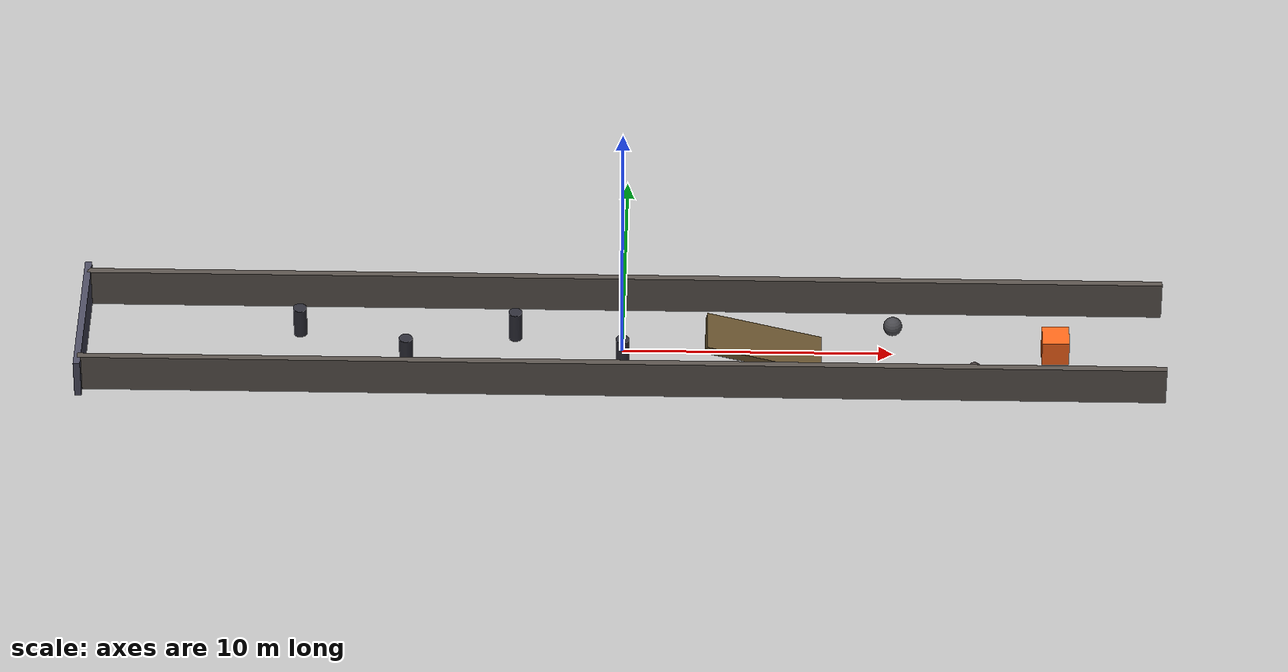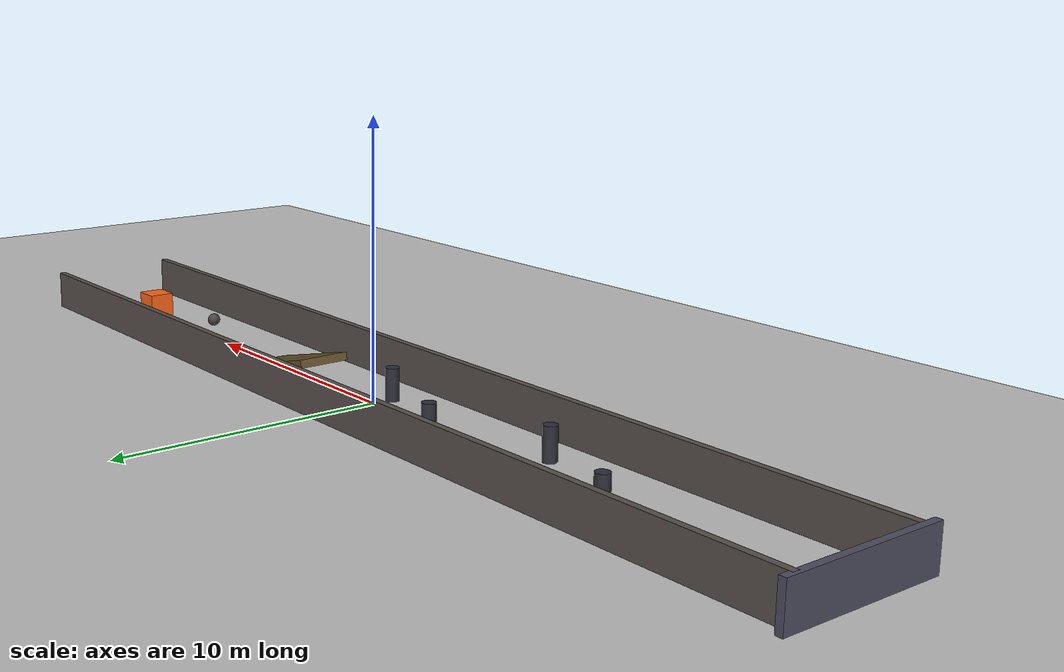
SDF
<?xml version="1.0" ?>
<sdf version="1.7">
  <world name="test01_lidar_world">
    <!-- SPAWN SPECIFICATION -->
    <!--
        x: -18 or 0 for middle
        y: 0
        z: 0.5
    -->

    <!-- Core sim systems -->
    <plugin filename="gz-sim-physics-system" name="gz::sim::systems::Physics"/>
    <plugin filename="gz-sim-user-commands-system" name="gz::sim::systems::UserCommands"/>
    <plugin filename="gz-sim-scene-broadcaster-system" name="gz::sim::systems::SceneBroadcaster"/>
    <plugin filename="gz-sim-sensors-system" name="gz::sim::systems::Sensors">
      <render_engine>ogre2</render_engine>
    </plugin>

    <!-- coordinate system real world mapping {-->
    <spherical_coordinates>
      <surface_model>EARTH_WGS84</surface_model>
      <latitude_deg>47.397743</latitude_deg>
      <longitude_deg>8.545594</longitude_deg>
      <elevation>0.0</elevation>
      <heading_deg>0</heading_deg>
    </spherical_coordinates>

    <!-- Cool LiDAR Playground -->

    <!-- Light -->
    <light name="sun" type="directional">
      <cast_shadows>true</cast_shadows>
      <pose>0 0 10 0 0 0</pose>
      <diffuse>1 1 1 1</diffuse>
      <specular>0.1 0.1 0.1 1</specular>
      <direction>-0.5 0.1 -1</direction>
    </light>

    <!-- Ground plane -->
    <model name="ground_plane">
      <static>true</static>
      <link name="link">
        <collision name="collision">
          <geometry>
            <plane>
              <normal>0 0 1</normal>
              <size>50 50</size>
            </plane>
          </geometry>
        </collision>
        <visual name="visual">
          <geometry>
            <plane>
              <normal>0 0 1</normal>
              <size>50 50</size>
            </plane>
          </geometry>
          <material>
            <diffuse>0.75 0.75 0.75 1</diffuse>
            <specular>0.1 0.1 0.1 1</specular>
          </material>
        </visual>
      </link>
    </model>

    <!-- Canyon corridor walls -->
    <model name="canyon_walls">
      <static>true</static>

      <!-- Left wall -->
      <link name="left_wall">
        <pose>0 2.5 0.75 0 0 0</pose>
        <collision name="col">
          <geometry><box><size>40 0.25 1.5</size></box></geometry>
        </collision>
        <visual name="vis">
          <geometry><box><size>40 0.25 1.5</size></box></geometry>
          <material>
            <ambient>0.25 0.23 0.22 1</ambient>
            <diffuse>0.35 0.32 0.30 1</diffuse>
            <specular>0.05 0.05 0.05 1</specular>
          </material>
        </visual>
      </link>

      <!-- Right wall -->
      <link name="right_wall">
        <pose>0 -2.5 0.75 0 0 0</pose>
        <collision name="col">
          <geometry><box><size>40 0.25 1.5</size></box></geometry>
        </collision>
        <visual name="vis">
          <geometry><box><size>40 0.25 1.5</size></box></geometry>
          <material>
            <ambient>0.25 0.23 0.22 1</ambient>
            <diffuse>0.35 0.32 0.30 1</diffuse>
            <specular>0.05 0.05 0.05 1</specular>
          </material>
        </visual>
      </link>

      <!-- Back wall -->
      <link name="back_wall">
        <pose>-20 0 0.75 0 0 0</pose>
        <collision name="col">
          <geometry><box><size>0.25 6 1.5</size></box></geometry>
        </collision>
        <visual name="vis">
          <geometry><box><size>0.25 6 1.5</size></box></geometry>
          <material>
            <ambient>0.22 0.22 0.25 1</ambient>
            <diffuse>0.30 0.30 0.38 1</diffuse>
          </material>
        </visual>
      </link>
    </model>

    <!-- Pillars (slalom)      -->
    <model name="pillar_field">
      <static>true</static>

      <!-- Pillar 1 -->
      <link name="p1">
        <pose>-12 0.8 0.6 0 0 0</pose>
        <collision name="col">
          <geometry><cylinder><radius>0.25</radius><length>1.2</length></cylinder></geometry>
        </collision>
        <visual name="vis">
          <geometry><cylinder><radius>0.25</radius><length>1.2</length></cylinder></geometry>
          <material>
            <ambient>0.10 0.10 0.12 1</ambient>
            <diffuse>0.18 0.18 0.22 1</diffuse>
          </material>
        </visual>
      </link>

      <!-- Pillar 2 -->
      <link name="p2">
        <pose>-8 -0.9 0.6 0 0 0</pose>
        <collision name="col">
          <geometry><cylinder><radius>0.25</radius><length>1.2</length></cylinder></geometry>
        </collision>
        <visual name="vis">
          <geometry><cylinder><radius>0.25</radius><length>1.2</length></cylinder></geometry>
          <material>
            <ambient>0.10 0.10 0.12 1</ambient>
            <diffuse>0.18 0.18 0.22 1</diffuse>
          </material>
        </visual>
      </link>

      <!-- Pillar 3 -->
      <link name="p3">
        <pose>-4 0.7 0.6 0 0 0</pose>
        <collision name="col">
          <geometry><cylinder><radius>0.25</radius><length>1.2</length></cylinder></geometry>
        </collision>
        <visual name="vis">
          <geometry><cylinder><radius>0.25</radius><length>1.2</length></cylinder></geometry>
          <material>
            <ambient>0.10 0.10 0.12 1</ambient>
            <diffuse>0.18 0.18 0.22 1</diffuse>
          </material>
        </visual>
      </link>

      <!-- Pillar 4 -->
      <link name="p4">
        <pose>0 -0.8 0.6 0 0 0</pose>
        <collision name="col">
          <geometry><cylinder><radius>0.25</radius><length>1.2</length></cylinder></geometry>
        </collision>
        <visual name="vis">
          <geometry><cylinder><radius>0.25</radius><length>1.2</length></cylinder></geometry>
          <material>
            <ambient>0.10 0.10 0.12 1</ambient>
            <diffuse>0.18 0.18 0.22 1</diffuse>
          </material>
        </visual>
      </link>
    </model>

    <!-- Ramp                  -->
    <model name="ramp">
      <static>true</static>
      <link name="ramp_link">
        <!-- Slight pitch for ramp -->
        <pose>6 0 0.15 0 0.25 0</pose>
        <collision name="col">
          <geometry><box><size>6 2 0.3</size></box></geometry>
        </collision>
        <visual name="vis">
          <geometry><box><size>6 2 0.3</size></box></geometry>
          <material>
            <ambient>0.25 0.20 0.10 1</ambient>
            <diffuse>0.40 0.32 0.18 1</diffuse>
          </material>
        </visual>
      </link>
    </model>

    <!-- "Rocks" (spheres)     -->
    <model name="rocks">
      <static>true</static>

      <link name="r1">
        <pose>10 1.2 0.35 0 0 0</pose>
        <collision name="col"><geometry><sphere><radius>0.35</radius></sphere></geometry></collision>
        <visual name="vis">
          <geometry><sphere><radius>0.35</radius></sphere></geometry>
          <material>
            <ambient>0.20 0.20 0.22 1</ambient>
            <diffuse>0.28 0.28 0.30 1</diffuse>
          </material>
        </visual>
      </link>

      <link name="r2">
        <pose>13 -1.1 0.25 0 0 0</pose>
        <collision name="col"><geometry><sphere><radius>0.25</radius></sphere></geometry></collision>
        <visual name="vis">
          <geometry><sphere><radius>0.25</radius></sphere></geometry>
          <material>
            <ambient>0.20 0.18 0.18 1</ambient>
            <diffuse>0.30 0.26 0.26 1</diffuse>
          </material>
        </visual>
      </link>
    </model>

    <!-- Target "Hot Box"      -->
    <model name="hot_box">
      <static>true</static>

      <!-- Position: x y z roll pitch yaw -->
      <pose>16 0 0.5 0 0 0</pose>

      <!-- Custom semantic data -->
      <user_data>
        <temperature units="celsius">75</temperature>
      </user_data>

      <link name="link">
        <collision name="collision">
          <geometry><box><size>1 1 1</size></box></geometry>
        </collision>

        <!-- Orange box -->
        <visual name="visual">
          <geometry><box><size>1 1 1</size></box></geometry>
          <material>
            <ambient>0.9 0.35 0.05 1</ambient>
            <diffuse>1.0 0.4 0.1 1</diffuse>
            <specular>0.15 0.15 0.15 1</specular>
          </material>
        </visual>
      </link>
    </model>

  </world>
</sdf>
